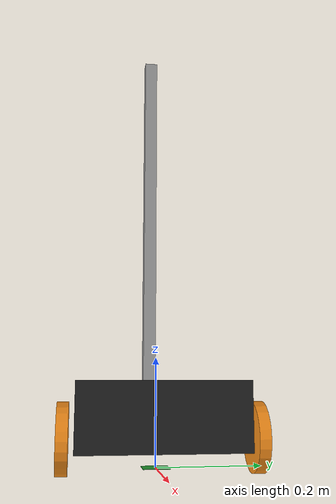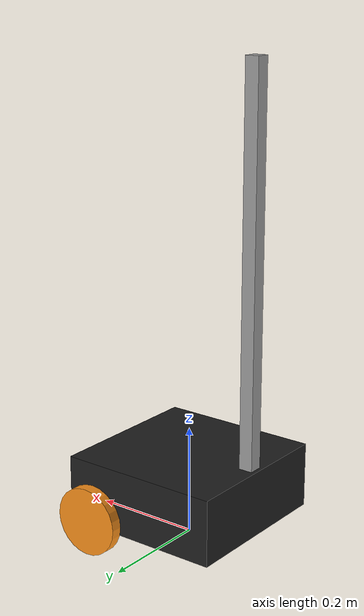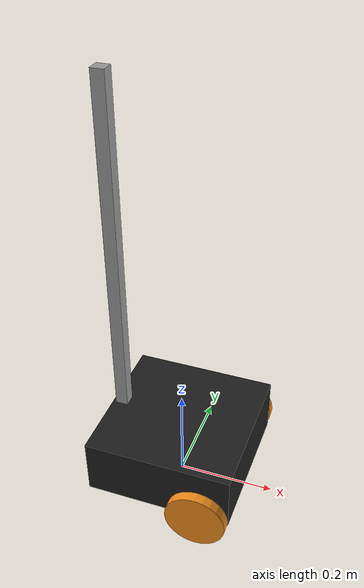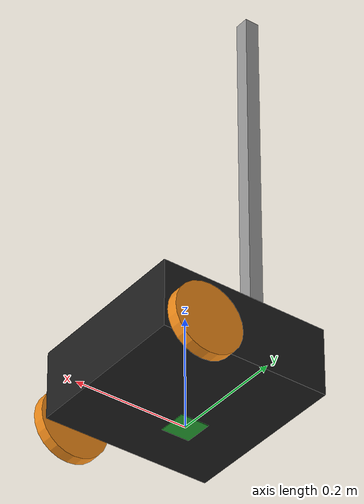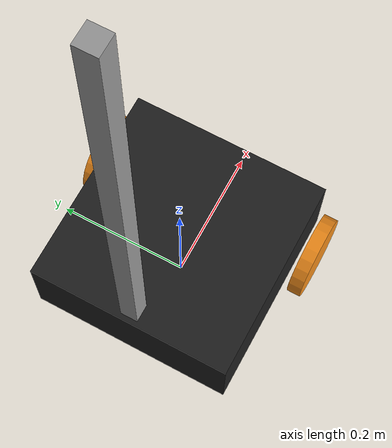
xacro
<?xml version="1.0"?>

<robot name="box_robot" xmlns:xacro="http://ros.org/wiki/xacro">

   <!-- Define a number of dimensions using properties -->
   <property name="torso_offset_x" value="-0.13" />
   <property name="torso_offset_y" value="0.0" />
   <property name="torso_offset_z" value="0.41" />

   <!-- Include all component files -->
   <xacro:include filename="$(find rbx2_description)/urdf/materials.urdf.xacro" />
   <xacro:include filename="$(find rbx2_description)/urdf/box_robot/base.urdf.xacro" />
   <xacro:include filename="$(find rbx2_description)/urdf/box_robot/torso.urdf.xacro" />

   <!-- Add the base and wheels -->
   <base name="base" color="Black"/>

   <!-- Attach the torso -->
   <torso name="torso" parent="base" color="Grey">
      <origin xyz="${torso_offset_x} ${torso_offset_y} ${torso_offset_z}" rpy="0 0 0" />
   </torso>

</robot>

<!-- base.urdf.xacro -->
<robot name="base" xmlns:xacro="http://ros.org/wiki/xacro">

  <!-- Define a number of dimensions using properties -->
  <property name="base_size_x" value="0.30" />
  <property name="base_size_y" value="0.30" />
  <property name="base_size_z" value="0.12" />
  <property name="wheel_length" value="0.02032" />
  <property name="wheel_radius" value="0.06191" />
  <property name="wheel_offset_x" value="0.09" />
  <property name="wheel_offset_y" value="0.17" />
  <property name="wheel_offset_z" value="-0.038" />

  <property name="PI" value="3.1415" />

  <!-- define a wheel -->
  <macro name="wheel" params="suffix parent reflect color">
    <joint name="${parent}_${suffix}_wheel_joint" type="continuous">
      <axis xyz="0 0 1" />
      <limit effort="100" velocity="100"/>
      <safety_controller k_velocity="10" />
      <origin xyz="${wheel_offset_x} ${reflect*wheel_offset_y} ${wheel_offset_z}" rpy="${reflect*PI/2} 0 0" />
      <parent link="${parent}_link"/>
      <child link="${parent}_${suffix}_wheel_link"/>
    </joint>
    <link name="${parent}_${suffix}_wheel_link">
      <visual>
        <origin xyz="0 0 0" rpy="0 0 0" />
        <geometry>
          <cylinder radius="${wheel_radius}" length="${wheel_length}"/>
        </geometry>
        <material name="${color}" />
      </visual>
    </link>
  </macro>

  <!-- The base xacro macro -->
  <macro name="base" params="name color">
    <link name="${name}_link">
      <visual>
        <origin xyz="0 0 0" rpy="0 0 0" />
        <geometry>
          <box size="${base_size_x} ${base_size_y} ${base_size_z}" />
        </geometry>
        <material name="${color}" />
      </visual>
      <collision>
        <origin xyz="0 0 0" rpy="0 0 0" />
        <geometry>
          <box size="${base_size_x} ${wheel_offset_y*2 + wheel_length} ${base_size_z}" />
        </geometry>
      </collision>
    </link>
  </macro>

  <link name="base_footprint">
      <visual>
        <origin xyz="0 0 0" rpy="0 0 0" />
        <geometry>
          <box size="0.05 0.05 0.001" />
        </geometry>
        <material name="TransparentGreen" />
      </visual>
  </link>

  <joint name="base_joint" type="fixed">
    <origin xyz="0 0 ${base_size_z/2 - wheel_offset_z}" rpy="0 0 0" />
    <parent link="base_footprint"/>
    <child link="base_link" />
  </joint>

   <!-- Add the drive wheels -->
   <wheel parent="base" suffix="l" reflect="1" color="Orange"/>
   <wheel parent="base" suffix="r" reflect="-1" color="Orange"/>

</robot>

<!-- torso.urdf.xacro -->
<robot name="torso" xmlns:xacro="http://ros.org/wiki/xacro">

  <!-- Define a number of dimensions using properties -->
  <property name="torso_size_x" value="0.0254" />
  <property name="torso_size_y" value="0.0254" />
  <property name="torso_size_z" value="0.7" />

  <!-- Define the torso -->
  <macro name="torso" params="parent name color *origin">
    <joint name="${parent}_${name}_joint" type="fixed">
      <xacro:insert_block name="origin" />
      <parent link="${parent}_link"/>
      <child link="${name}_link"/>
    </joint>
    <link name="${name}_link">
      <visual>
        <origin xyz="0 0 0" rpy="0 0 0" />
        <geometry>
          <box size="${torso_size_x} ${torso_size_y} ${torso_size_z}" />
        </geometry>
        <material name="${color}" />
      </visual>
      <collision>
        <origin xyz="0 0 0" rpy="0 0 0" />
        <geometry>
          <box size="${torso_size_x} ${torso_size_y} ${torso_size_z}" />
        </geometry>
      </collision>
    </link>
  </macro>

</robot>
